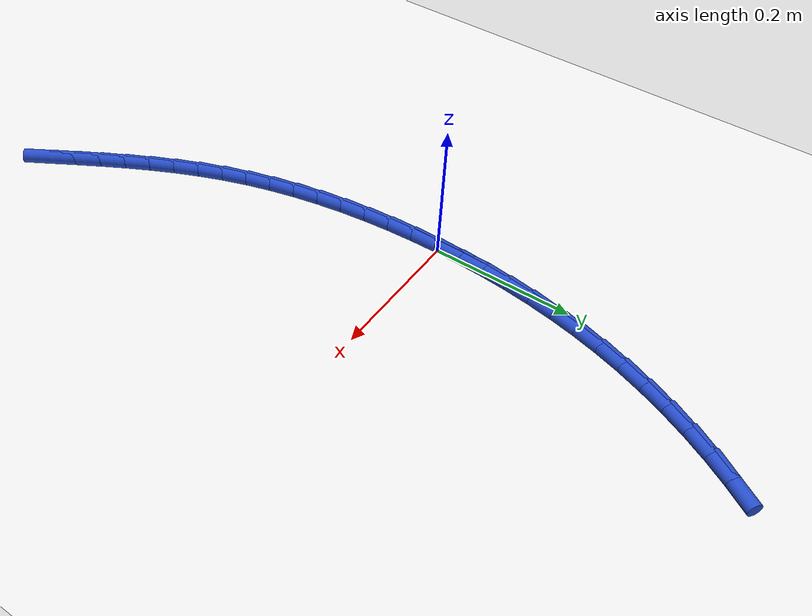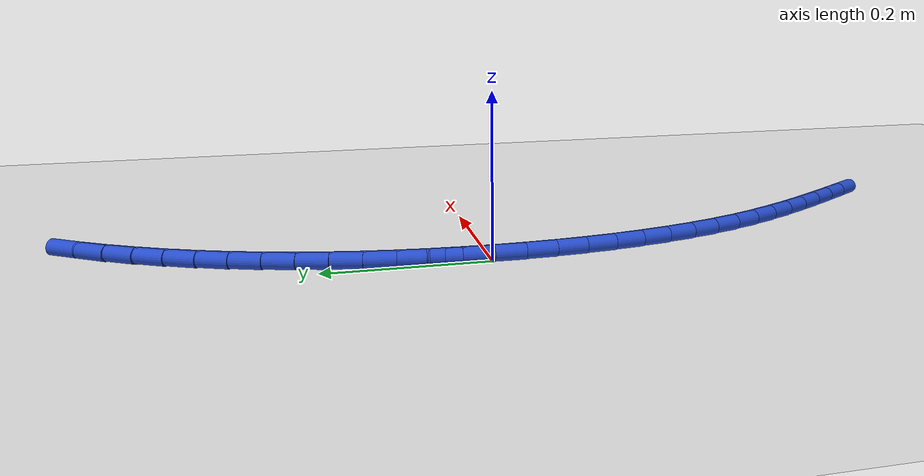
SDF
<sdf version="1.6">
 <world name="default">
  <model name="ground_plane">
   <static>1</static>
   <link name="link">
    <collision name="collision">
     <geometry><plane><normal>0 0 1</normal><size>100 100</size></plane></geometry>
     <surface><friction><ode><mu>100</mu><mu2>50</mu2></ode></friction></surface>
    </collision>
    <visual name="visual">
     <cast_shadows>0</cast_shadows>
     <geometry><plane><normal>0 0 1</normal><size>100 100</size></plane></geometry>
     <material>
      <script><uri>file://media/materials/scripts/gazebo.material</uri><name>Gazebo/WhiteGlow</name></script>
     </material>
    </visual>
   </link>
  </model>
  <model name="line">
   <link name="link_0">
    <pose>9.540979117872439e-18 -6.938893903907228e-18 0.01 0 1.57 1.5555664343499438</pose>
    <collision name="collision">
     <geometry><cylinder><radius>0.01</radius><length>0.08</length></cylinder></geometry>
    </collision>
    <visual name="visual">
     <material>
      <script><name>Gazebo/Blue</name><uri>file://media/materials/scripts/gazebo.material</uri></script>
     </material>
     <geometry><cylinder><radius>0.01</radius><length>0.08</length></cylinder></geometry>
    </visual>
   </link>
   <link name="link_1">
    <pose>0.0005775177569326404 0.03791708356798158 0.01 0 1.57 1.5206145027544753</pose>
    <collision name="collision">
     <geometry><cylinder><radius>0.01</radius><length>0.08</length></cylinder></geometry>
    </collision>
    <visual name="visual">
     <material>
      <script><name>Gazebo/Blue</name><uri>file://media/materials/scripts/gazebo.material</uri></script>
     </material>
     <geometry><cylinder><radius>0.01</radius><length>0.08</length></cylinder></geometry>
    </visual>
   </link>
   <link name="link_2">
    <pose>0.002475163760640958 0.07570074087113149 0.01 0 1.57 1.4840044917962172</pose>
    <collision name="collision">
     <geometry><cylinder><radius>0.01</radius><length>0.08</length></cylinder></geometry>
    </collision>
    <visual name="visual">
     <material>
      <script><name>Gazebo/Blue</name><uri>file://media/materials/scripts/gazebo.material</uri></script>
     </material>
     <geometry><cylinder><radius>0.01</radius><length>0.08</length></cylinder></geometry>
    </visual>
   </link>
   <link name="link_3">
    <pose>0.005747601682768005 0.11331046412042428 0.01 0 1.57 1.4457177633226181</pose>
    <collision name="collision">
     <geometry><cylinder><radius>0.01</radius><length>0.08</length></cylinder></geometry>
    </collision>
    <visual name="visual">
     <material>
      <script><name>Gazebo/Blue</name><uri>file://media/materials/scripts/gazebo.material</uri></script>
     </material>
     <geometry><cylinder><radius>0.01</radius><length>0.08</length></cylinder></geometry>
    </visual>
   </link>
   <link name="link_4">
    <pose>0.010449495194956807 0.15070574552683452 0.01 0 1.57 1.4057535540324855</pose>
    <collision name="collision">
     <geometry><cylinder><radius>0.01</radius><length>0.08</length></cylinder></geometry>
    </collision>
    <visual name="visual">
     <material>
      <script><name>Gazebo/Blue</name><uri>file://media/materials/scripts/gazebo.material</uri></script>
     </material>
     <geometry><cylinder><radius>0.01</radius><length>0.08</length></cylinder></geometry>
    </visual>
   </link>
   <link name="link_5">
    <pose>0.016635507968850397 0.18784607730133668 0.01 0 1.57 1.3641324108347637</pose>
    <collision name="collision">
     <geometry><cylinder><radius>0.01</radius><length>0.08</length></cylinder></geometry>
    </collision>
    <visual name="visual">
     <material>
      <script><name>Gazebo/Blue</name><uri>file://media/materials/scripts/gazebo.material</uri></script>
     </material>
     <geometry><cylinder><radius>0.01</radius><length>0.08</length></cylinder></geometry>
    </visual>
   </link>
   <link name="link_6">
    <pose>0.02436030367609182 0.22469095165490532 0.01 0 1.57 1.320899511959379</pose>
    <collision name="collision">
     <geometry><cylinder><radius>0.01</radius><length>0.08</length></cylinder></geometry>
    </collision>
    <visual name="visual">
     <material>
      <script><name>Gazebo/Blue</name><uri>file://media/materials/scripts/gazebo.material</uri></script>
     </material>
     <geometry><cylinder><radius>0.01</radius><length>0.08</length></cylinder></geometry>
    </visual>
   </link>
   <link name="link_7">
    <pose>0.03367854598832409 0.26119986079851504 0.01 0 1.57 1.2761276148134053</pose>
    <collision name="collision">
     <geometry><cylinder><radius>0.01</radius><length>0.08</length></cylinder></geometry>
    </collision>
    <visual name="visual">
     <material>
      <script><name>Gazebo/Blue</name><uri>file://media/materials/scripts/gazebo.material</uri></script>
     </material>
     <geometry><cylinder><radius>0.01</radius><length>0.08</length></cylinder></geometry>
    </visual>
   </link>
   <link name="link_8">
    <pose>0.04464489857719027 0.29733229694314034 0.01 0 1.57 1.229924583732213</pose>
    <collision name="collision">
     <geometry><cylinder><radius>0.01</radius><length>0.08</length></cylinder></geometry>
    </collision>
    <visual name="visual">
     <material>
      <script><name>Gazebo/Blue</name><uri>file://media/materials/scripts/gazebo.material</uri></script>
     </material>
     <geometry><cylinder><radius>0.01</radius><length>0.08</length></cylinder></geometry>
    </visual>
   </link>
   <link name="link_9">
    <pose>0.05731375742164818 0.3330475937956359 0.01 0 1.57 1.1831204361742982</pose>
    <collision name="collision">
     <geometry><cylinder><radius>0.01</radius><length>0.08</length></cylinder></geometry>
    </collision>
    <visual name="visual">
     <material>
      <script><name>Gazebo/Blue</name><uri>file://media/materials/scripts/gazebo.material</uri></script>
     </material>
     <geometry><cylinder><radius>0.01</radius><length>0.08</length></cylinder></geometry>
    </visual>
   </link>
   <link name="link_10">
    <pose>0.0717016764282707 0.36828267830798417 0.01 0 1.57 1.1370509963883229</pose>
    <collision name="collision">
     <geometry><cylinder><radius>0.01</radius><length>0.08</length></cylinder></geometry>
    </collision>
    <visual name="visual">
     <material>
      <script><name>Gazebo/Blue</name><uri>file://media/materials/scripts/gazebo.material</uri></script>
     </material>
     <geometry><cylinder><radius>0.01</radius><length>0.08</length></cylinder></geometry>
    </visual>
   </link>
   <link name="link_11">
    <pose>0.08774858320792908 0.4029291060633097 0.01 0 1.57 1.0916071902258262</pose>
    <collision name="collision">
     <geometry><cylinder><radius>0.01</radius><length>0.08</length></cylinder></geometry>
    </collision>
    <visual name="visual">
     <material>
      <script><name>Gazebo/Blue</name><uri>file://media/materials/scripts/gazebo.material</uri></script>
     </material>
     <geometry><cylinder><radius>0.01</radius><length>0.08</length></cylinder></geometry>
    </visual>
   </link>
   <link name="link_12">
    <pose>0.10538514813811185 0.436872951323389 0.01 0 1.57 1.0465001491867596</pose>
    <collision name="collision">
     <geometry><cylinder><radius>0.01</radius><length>0.08</length></cylinder></geometry>
    </collision>
    <visual name="visual">
     <material>
      <script><name>Gazebo/Blue</name><uri>file://media/materials/scripts/gazebo.material</uri></script>
     </material>
     <geometry><cylinder><radius>0.01</radius><length>0.08</length></cylinder></geometry>
    </visual>
   </link>
   <link name="link_13">
    <pose>0.12454204159630758 0.47000028834999896 0.01 0 1.57 1.0014418363851505</pose>
    <collision name="collision">
     <geometry><cylinder><radius>0.01</radius><length>0.08</length></cylinder></geometry>
    </collision>
    <visual name="visual">
     <material>
      <script><name>Gazebo/Blue</name><uri>file://media/materials/scripts/gazebo.material</uri></script>
     </material>
     <geometry><cylinder><radius>0.01</radius><length>0.08</length></cylinder></geometry>
    </visual>
   </link>
   <link name="link_174">
    <pose>0.17953508279629013 -0.5639690658413988 0.01 0 1.57 -1.0189160129788202</pose>
    <collision name="collision">
     <geometry><cylinder><radius>0.01</radius><length>0.08</length></cylinder></geometry>
    </collision>
    <visual name="visual">
     <material>
      <script><name>Gazebo/Blue</name><uri>file://media/materials/scripts/gazebo.material</uri></script>
     </material>
     <geometry><cylinder><radius>0.01</radius><length>0.08</length></cylinder></geometry>
    </visual>
   </link>
   <link name="link_175">
    <pose>0.15950988678148262 -0.5314445439084712 0.01 0 1.57 -1.0304476640173348</pose>
    <collision name="collision">
     <geometry><cylinder><radius>0.01</radius><length>0.08</length></cylinder></geometry>
    </collision>
    <visual name="visual">
     <material>
      <script><name>Gazebo/Blue</name><uri>file://media/materials/scripts/gazebo.material</uri></script>
     </material>
     <geometry><cylinder><radius>0.01</radius><length>0.08</length></cylinder></geometry>
    </visual>
   </link>
   <link name="link_176">
    <pose>0.14004316000242642 -0.4989947892037923 0.01 0 1.57 -1.0481757988938325</pose>
    <collision name="collision">
     <geometry><cylinder><radius>0.01</radius><length>0.08</length></cylinder></geometry>
    </collision>
    <visual name="visual">
     <material>
      <script><name>Gazebo/Blue</name><uri>file://media/materials/scripts/gazebo.material</uri></script>
     </material>
     <geometry><cylinder><radius>0.01</radius><length>0.08</length></cylinder></geometry>
    </visual>
   </link>
   <link name="link_177">
    <pose>0.12131101976508393 -0.46647634745630157 0.01 0 1.57 -1.072194196237786</pose>
    <collision name="collision">
     <geometry><cylinder><radius>0.01</radius><length>0.08</length></cylinder></geometry>
    </collision>
    <visual name="visual">
     <material>
      <script><name>Gazebo/Blue</name><uri>file://media/materials/scripts/gazebo.material</uri></script>
     </material>
     <geometry><cylinder><radius>0.01</radius><length>0.08</length></cylinder></geometry>
    </visual>
   </link>
   <link name="link_178">
    <pose>0.10348958337541746 -0.4337457643949374 0.01 0 1.57 -1.102528489983749</pose>
    <collision name="collision">
     <geometry><cylinder><radius>0.01</radius><length>0.08</length></cylinder></geometry>
    </collision>
    <visual name="visual">
     <material>
      <script><name>Gazebo/Blue</name><uri>file://media/materials/scripts/gazebo.material</uri></script>
     </material>
     <geometry><cylinder><radius>0.01</radius><length>0.08</length></cylinder></geometry>
    </visual>
   </link>
   <link name="link_179">
    <pose>0.08675496813938971 -0.40065958574863964 0.01 0 1.57 -1.1391054866026527</pose>
    <collision name="collision">
     <geometry><cylinder><radius>0.01</radius><length>0.08</length></cylinder></geometry>
    </collision>
    <visual name="visual">
     <material>
      <script><name>Gazebo/Blue</name><uri>file://media/materials/scripts/gazebo.material</uri></script>
     </material>
     <geometry><cylinder><radius>0.01</radius><length>0.08</length></cylinder></geometry>
    </visual>
   </link>
   <link name="link_180">
    <pose>0.07128329136296231 -0.3670743572463459 0.01 0 1.57 -1.181717838771535</pose>
    <collision name="collision">
     <geometry><cylinder><radius>0.01</radius><length>0.08</length></cylinder></geometry>
    </collision>
    <visual name="visual">
     <material>
      <script><name>Gazebo/Blue</name><uri>file://media/materials/scripts/gazebo.material</uri></script>
     </material>
     <geometry><cylinder><radius>0.01</radius><length>0.08</length></cylinder></geometry>
    </visual>
   </link>
   <link name="link_181">
    <pose>0.05725067035209792 -0.3328466246169956 0.01 0 1.57 -1.2294044203837369</pose>
    <collision name="collision">
     <geometry><cylinder><radius>0.01</radius><length>0.08</length></cylinder></geometry>
    </collision>
    <visual name="visual">
     <material>
      <script><name>Gazebo/Blue</name><uri>file://media/materials/scripts/gazebo.material</uri></script>
     </material>
     <geometry><cylinder><radius>0.01</radius><length>0.08</length></cylinder></geometry>
    </visual>
   </link>
   <link name="link_182">
    <pose>0.04481674261508157 -0.29785141676613786 0.01 0 1.57 -1.2769892651750876</pose>
    <collision name="collision">
     <geometry><cylinder><radius>0.01</radius><length>0.08</length></cylinder></geometry>
    </collision>
    <visual name="visual">
     <material>
      <script><name>Gazebo/Blue</name><uri>file://media/materials/scripts/gazebo.material</uri></script>
     </material>
     <geometry><cylinder><radius>0.01</radius><length>0.08</length></cylinder></geometry>
    </visual>
   </link>
   <link name="link_183">
    <pose>0.03400473494246737 -0.2621167561880001 0.01 0 1.57 -1.322156944591275</pose>
    <collision name="collision">
     <geometry><cylinder><radius>0.01</radius><length>0.08</length></cylinder></geometry>
    </collision>
    <visual name="visual">
     <material>
      <script><name>Gazebo/Blue</name><uri>file://media/materials/scripts/gazebo.material</uri></script>
     </material>
     <geometry><cylinder><radius>0.01</radius><length>0.08</length></cylinder></geometry>
    </visual>
   </link>
   <link name="link_184">
    <pose>0.02477050737809172 -0.22574622161248808 0.01 0 1.57 -1.365061106734149</pose>
    <collision name="collision">
     <geometry><cylinder><radius>0.01</radius><length>0.08</length></cylinder></geometry>
    </collision>
    <visual name="visual">
     <material>
      <script><name>Gazebo/Blue</name><uri>file://media/materials/scripts/gazebo.material</uri></script>
     </material>
     <geometry><cylinder><radius>0.01</radius><length>0.08</length></cylinder></geometry>
    </visual>
   </link>
   <link name="link_185">
    <pose>0.01706944341722518 -0.18884392625005603 0.01 0 1.57 -1.4058858927760725</pose>
    <collision name="collision">
     <geometry><cylinder><radius>0.01</radius><length>0.08</length></cylinder></geometry>
    </collision>
    <visual name="visual">
     <material>
      <script><name>Gazebo/Blue</name><uri>file://media/materials/scripts/gazebo.material</uri></script>
     </material>
     <geometry><cylinder><radius>0.01</radius><length>0.08</length></cylinder></geometry>
    </visual>
   </link>
   <link name="link_186">
    <pose>0.010856926555138478 -0.1515139833111592 0.01 0 1.57 -1.4448229720339965</pose>
    <collision name="collision">
     <geometry><cylinder><radius>0.01</radius><length>0.08</length></cylinder></geometry>
    </collision>
    <visual name="visual">
     <material>
      <script><name>Gazebo/Blue</name><uri>file://media/materials/scripts/gazebo.material</uri></script>
     </material>
     <geometry><cylinder><radius>0.01</radius><length>0.08</length></cylinder></geometry>
    </visual>
   </link>
   <link name="link_187">
    <pose>0.006088340287101925 -0.11386050600625028 0.01 0 1.57 -1.4820672947891564</pose>
    <collision name="collision">
     <geometry><cylinder><radius>0.01</radius><length>0.08</length></cylinder></geometry>
    </collision>
    <visual name="visual">
     <material>
      <script><name>Gazebo/Blue</name><uri>file://media/materials/scripts/gazebo.material</uri></script>
     </material>
     <geometry><cylinder><radius>0.01</radius><length>0.08</length></cylinder></geometry>
    </visual>
   </link>
   <link name="link_188">
    <pose>0.0027190681083862694 -0.07598760754578451 0.01 0 1.57 -1.5178143778416169</pose>
    <collision name="collision">
     <geometry><cylinder><radius>0.01</radius><length>0.08</length></cylinder></geometry>
    </collision>
    <visual name="visual">
     <material>
      <script><name>Gazebo/Blue</name><uri>file://media/materials/scripts/gazebo.material</uri></script>
     </material>
     <geometry><cylinder><radius>0.01</radius><length>0.08</length></cylinder></geometry>
    </visual>
   </link>
   <link name="link_189">
    <pose>0.0007044935142620974 -0.03799940114021622 0.01 0 1.57 -1.5522588552980343</pose>
    <collision name="collision">
     <geometry><cylinder><radius>0.01</radius><length>0.08</length></cylinder></geometry>
    </collision>
    <visual name="visual">
     <material>
      <script><name>Gazebo/Blue</name><uri>file://media/materials/scripts/gazebo.material</uri></script>
     </material>
     <geometry><cylinder><radius>0.01</radius><length>0.08</length></cylinder></geometry>
    </visual>
   </link>
   <link name="link_190">
    <pose>-2.6020852139652106e-18 2.2898349882893854e-16 0.01 0 1.57 1.5559985910249206</pose>
    <collision name="collision">
     <geometry><cylinder><radius>0.01</radius><length>0.08</length></cylinder></geometry>
    </collision>
    <visual name="visual">
     <material>
      <script><name>Gazebo/Blue</name><uri>file://media/materials/scripts/gazebo.material</uri></script>
     </material>
     <geometry><cylinder><radius>0.01</radius><length>0.08</length></cylinder></geometry>
    </visual>
   </link>
   <link name="link_191">
    <pose>0.0005609710608705659 0.037906482664410476 0.01 0 1.57 1.555998591024921</pose>
    <collision name="collision">
     <geometry><cylinder><radius>0.01</radius><length>0.08</length></cylinder></geometry>
    </collision>
    <visual name="visual">
     <material>
      <script><name>Gazebo/Blue</name><uri>file://media/materials/scripts/gazebo.material</uri></script>
     </material>
     <geometry><cylinder><radius>0.01</radius><length>0.08</length></cylinder></geometry>
    </visual>
   </link>
  </model>
 </world>
</sdf>
